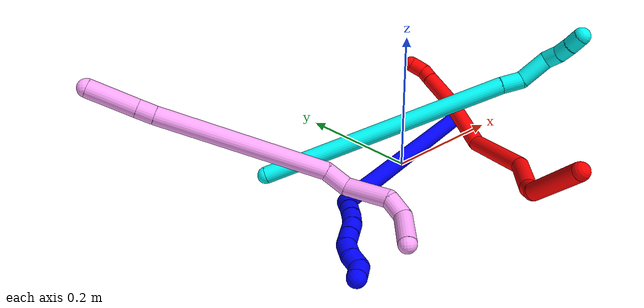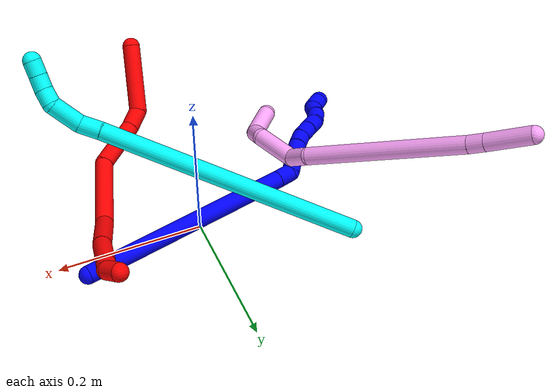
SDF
<sdf version="1.7">
 <world name="default">
  <plugin name="TubeGeneratorPlugin" filename="libtube_generator_plugin.so"/>
  <model name="photoneo_s_sensor">
   <static>1</static>
   <pose>0 0 2 1.57079 1.57079 3.14159</pose>
   <link name="link">
    <inertial><mass>0.1</mass></inertial>
    <sensor name="sensor" type="depth">
     <update_rate>30</update_rate>
     <camera>
      <horizontal_fov>1.22</horizontal_fov>
      <image><width>1920</width><height>1200</height><format>B8G8R8</format></image>
      <clip><near>0.1</near><far>4</far></clip>
      <depth_camera><output>points</output></depth_camera>
     </camera>
     <plugin name="camera_plugin" filename="libgazebo_ros_depth_camera.so">
      <baseline>0.2</baseline>
      <alwaysOn>1</alwaysOn>
      <updateRate>0.0</updateRate>
      <cameraName>camera_ir</cameraName>
      <imageTopicName>/camera/color/image_raw</imageTopicName>
      <cameraInfoTopicName>/camera/color/camera_info</cameraInfoTopicName>
      <depthImageTopicName>/camera/depth/image_raw</depthImageTopicName>
      <depthImageCameraInfoTopicName>/camera/depth/camera_info</depthImageCameraInfoTopicName>
      <pointCloudTopicName>/camera/depth/points</pointCloudTopicName>
      <frameName>fr_optical</frameName>
      <pointCloudCutoff>0.1</pointCloudCutoff>
      <pointCloudCutoffMax>2.0</pointCloudCutoffMax>
      <distortionK1>0</distortionK1>
      <distortionK2>0</distortionK2>
      <distortionK3>0</distortionK3>
      <distortionT1>0</distortionT1>
      <distortionT2>0</distortionT2>
      <CxPrime>0</CxPrime>
      <Cx>0</Cx>
      <Cy>0</Cy>
      <focalLength>0</focalLength>
      <hackBaseline>0</hackBaseline>
     </plugin>
    </sensor>
   </link>
  </model>
  <gravity>0 0 -9.8</gravity>
  <magnetic_field>6e-06 2.3e-05 -4.2e-05</magnetic_field>
  <atmosphere type="adiabatic"/>
  <physics name="default_physics" default="0" type="ode">
   <max_step_size>0.003</max_step_size>
   <real_time_factor>1</real_time_factor>
   <real_time_update_rate>1000</real_time_update_rate>
   <max_contacts>10000</max_contacts>
   <ode>
    <solver>
     <type>quick</type>
     <iters>100</iters>
     <sor>1.3</sor>
     <use_dynamic_moi_rescaling>0</use_dynamic_moi_rescaling>
    </solver>
    <constraints>
     <contact_max_correcting_vel>0</contact_max_correcting_vel>
     <contact_surface_layer>0.001</contact_surface_layer>
     <cfm>0</cfm>
     <erp>0.2</erp>
    </constraints>
   </ode>
  </physics>
  <scene><ambient>0.4 0.4 0.4 1</ambient><background>0.7 0.7 0.7 1</background><shadows>0</shadows></scene>
  <audio><device>default</device></audio>
  <spherical_coordinates>
   <surface_model>EARTH_WGS84</surface_model>
   <latitude_deg>0</latitude_deg>
   <longitude_deg>0</longitude_deg>
   <elevation>0</elevation>
   <heading_deg>0</heading_deg>
  </spherical_coordinates>
  <model name="bin">
   <static>1</static>
   <link name="bottom">
    <collision name="collision-bottom">
     <pose>0 0 -0.01 0 -0 0</pose>
     <geometry><box><size>0.8 0.6 0.02</size></box></geometry>
     <surface>
      <friction><ode><mu>100</mu><mu2>100</mu2></ode></friction>
      <contact><collide_bitmask>65535</collide_bitmask></contact>
     </surface>
    </collision>
   </link>
   <link name="west_wall">
    <collision name="collision-west_wall">
     <pose>-0.41 0 0.1 0 -0 0</pose>
     <geometry><box><size>0.02 0.6 0.2</size></box></geometry>
     <surface>
      <friction><ode><mu>100</mu><mu2>100</mu2></ode></friction>
      <contact><collide_bitmask>65535</collide_bitmask></contact>
     </surface>
    </collision>
   </link>
   <link name="east_wall">
    <collision name="collision-east_wall">
     <pose>0.41 0 0.1 0 -0 0</pose>
     <geometry><box><size>0.02 0.6 0.2</size></box></geometry>
     <surface>
      <friction><ode><mu>100</mu><mu2>100</mu2></ode></friction>
      <contact><collide_bitmask>65535</collide_bitmask></contact>
     </surface>
    </collision>
   </link>
   <link name="south_wall">
    <collision name="collision-south_wall">
     <pose>0 -0.31 0.1 0 -0 0</pose>
     <geometry><box><size>0.8 0.02 0.2</size></box></geometry>
     <surface>
      <friction><ode><mu>100</mu><mu2>100</mu2></ode></friction>
      <contact><collide_bitmask>65535</collide_bitmask></contact>
     </surface>
    </collision>
   </link>
   <link name="north_wall">
    <collision name="collision-north_wall">
     <pose>0 0.31 0.1 0 -0 0</pose>
     <geometry><box><size>0.8 0.02 0.2</size></box></geometry>
     <surface>
      <friction><ode><mu>100</mu><mu2>100</mu2></ode></friction>
      <contact><collide_bitmask>65535</collide_bitmask></contact>
     </surface>
    </collision>
   </link>
  </model>
  <model name="1">
   <static>0</static>
   <link name="1">
    <collision name="collision-cylinder-e_1_1_4">
     <pose>-0.127314 -0.02609 0.080693 0.312711 -0.983172 -0.168412</pose>
     <geometry><cylinder><radius>0.0125</radius><length>0.305947</length></cylinder></geometry>
     <surface>
      <friction><ode><mu>1.16</mu><mu2>1.16</mu2><slip1>0</slip1><slip2>0</slip2></ode></friction>
      <contact><ode><kp>1e+06</kp><kd>1</kd><max_vel>0</max_vel><min_depth>0.001</min_depth></ode></contact>
     </surface>
    </collision>
    <visual name="visual-cylinder-e_1_1_4">
     <pose>-0.127314 -0.02609 0.080693 0.312711 -0.983172 -0.168412</pose>
     <geometry><cylinder><radius>0.0125</radius><length>0.305947</length></cylinder></geometry>
     <material><ambient>0 0 1 1</ambient></material>
    </visual>
    <collision name="collision-cylinder-e_2_4_5">
     <pose>-0.264231 -0.05396 0.167011 0.306579 -1.01991 -0.172397</pose>
     <geometry><cylinder><radius>0.0125</radius><length>0.022542</length></cylinder></geometry>
     <surface>
      <friction><ode><mu>1.16</mu><mu2>1.16</mu2><slip1>0</slip1><slip2>0</slip2></ode></friction>
      <contact><ode><kp>1e+06</kp><kd>1</kd><max_vel>0</max_vel><min_depth>0.001</min_depth></ode></contact>
     </surface>
    </collision>
    <visual name="visual-cylinder-e_2_4_5">
     <pose>-0.264231 -0.05396 0.167011 0.306579 -1.01991 -0.172397</pose>
     <geometry><cylinder><radius>0.0125</radius><length>0.022542</length></cylinder></geometry>
     <material><ambient>0 0 1 1</ambient></material>
    </visual>
    <collision name="collision-cylinder-e_3_5_6">
     <pose>-0.28734 -0.053038 0.170917 -2.1374 -1.33797 1.92761</pose>
     <geometry><cylinder><radius>0.0125</radius><length>0.027761</length></cylinder></geometry>
     <surface>
      <friction><ode><mu>1.16</mu><mu2>1.16</mu2><slip1>0</slip1><slip2>0</slip2></ode></friction>
      <contact><ode><kp>1e+06</kp><kd>1</kd><max_vel>0</max_vel><min_depth>0.001</min_depth></ode></contact>
     </surface>
    </collision>
    <visual name="visual-cylinder-e_3_5_6">
     <pose>-0.28734 -0.053038 0.170917 -2.1374 -1.33797 1.92761</pose>
     <geometry><cylinder><radius>0.0125</radius><length>0.027761</length></cylinder></geometry>
     <material><ambient>0 0 1 1</ambient></material>
    </visual>
    <collision name="collision-cylinder-e_4_6_7">
     <pose>-0.311355 -0.047191 0.169084 -1.60707 -1.27979 1.31472</pose>
     <geometry><cylinder><radius>0.0125</radius><length>0.02194</length></cylinder></geometry>
     <surface>
      <friction><ode><mu>1.16</mu><mu2>1.16</mu2><slip1>0</slip1><slip2>0</slip2></ode></friction>
      <contact><ode><kp>1e+06</kp><kd>1</kd><max_vel>0</max_vel><min_depth>0.001</min_depth></ode></contact>
     </surface>
    </collision>
    <visual name="visual-cylinder-e_4_6_7">
     <pose>-0.311355 -0.047191 0.169084 -1.60707 -1.27979 1.31472</pose>
     <geometry><cylinder><radius>0.0125</radius><length>0.02194</length></cylinder></geometry>
     <material><ambient>0 0 1 1</ambient></material>
    </visual>
    <collision name="collision-cylinder-e_5_7_8">
     <pose>-0.331386 -0.040727 0.170282 -1.1942 -1.21228 0.880841</pose>
     <geometry><cylinder><radius>0.0125</radius><length>0.020339</length></cylinder></geometry>
     <surface>
      <friction><ode><mu>1.16</mu><mu2>1.16</mu2><slip1>0</slip1><slip2>0</slip2></ode></friction>
      <contact><ode><kp>1e+06</kp><kd>1</kd><max_vel>0</max_vel><min_depth>0.001</min_depth></ode></contact>
     </surface>
    </collision>
    <visual name="visual-cylinder-e_5_7_8">
     <pose>-0.331386 -0.040727 0.170282 -1.1942 -1.21228 0.880841</pose>
     <geometry><cylinder><radius>0.0125</radius><length>0.020339</length></cylinder></geometry>
     <material><ambient>0 0 1 1</ambient></material>
    </visual>
    <collision name="collision-cylinder-e_6_8_9">
     <pose>-0.350664 -0.035704 0.174917 -0.474007 -1.20512 0.329307</pose>
     <geometry><cylinder><radius>0.0125</radius><length>0.020891</length></cylinder></geometry>
     <surface>
      <friction><ode><mu>1.16</mu><mu2>1.16</mu2><slip1>0</slip1><slip2>0</slip2></ode></friction>
      <contact><ode><kp>1e+06</kp><kd>1</kd><max_vel>0</max_vel><min_depth>0.001</min_depth></ode></contact>
     </surface>
    </collision>
    <visual name="visual-cylinder-e_6_8_9">
     <pose>-0.350664 -0.035704 0.174917 -0.474007 -1.20512 0.329307</pose>
     <geometry><cylinder><radius>0.0125</radius><length>0.020891</length></cylinder></geometry>
     <material><ambient>0 0 1 1</ambient></material>
    </visual>
    <collision name="collision-cylinder-e_7_9_10">
     <pose>-0.369676 -0.031989 0.181788 -0.515512 -1.15587 0.340548</pose>
     <geometry><cylinder><radius>0.0125</radius><length>0.02023</length></cylinder></geometry>
     <surface>
      <friction><ode><mu>1.16</mu><mu2>1.16</mu2><slip1>0</slip1><slip2>0</slip2></ode></friction>
      <contact><ode><kp>1e+06</kp><kd>1</kd><max_vel>0</max_vel><min_depth>0.001</min_depth></ode></contact>
     </surface>
    </collision>
    <visual name="visual-cylinder-e_7_9_10">
     <pose>-0.369676 -0.031989 0.181788 -0.515512 -1.15587 0.340548</pose>
     <geometry><cylinder><radius>0.0125</radius><length>0.02023</length></cylinder></geometry>
     <material><ambient>0 0 1 1</ambient></material>
    </visual>
    <collision name="collision-cylinder-e_8_10_11">
     <pose>-0.387509 -0.024735 0.185963 -1.45175 -1.01886 0.920522</pose>
     <geometry><cylinder><radius>0.0125</radius><length>0.020146</length></cylinder></geometry>
     <surface>
      <friction><ode><mu>1.16</mu><mu2>1.16</mu2><slip1>0</slip1><slip2>0</slip2></ode></friction>
      <contact><ode><kp>1e+06</kp><kd>1</kd><max_vel>0</max_vel><min_depth>0.001</min_depth></ode></contact>
     </surface>
    </collision>
    <visual name="visual-cylinder-e_8_10_11">
     <pose>-0.387509 -0.024735 0.185963 -1.45175 -1.01886 0.920522</pose>
     <geometry><cylinder><radius>0.0125</radius><length>0.020146</length></cylinder></geometry>
     <material><ambient>0 0 1 1</ambient></material>
    </visual>
    <collision name="collision-cylinder-e_9_11_12">
     <pose>-0.402929 -0.012253 0.185536 -1.7155 -0.752168 0.856643</pose>
     <geometry><cylinder><radius>0.0125</radius><length>0.020031</length></cylinder></geometry>
     <surface>
      <friction><ode><mu>1.16</mu><mu2>1.16</mu2><slip1>0</slip1><slip2>0</slip2></ode></friction>
      <contact><ode><kp>1e+06</kp><kd>1</kd><max_vel>0</max_vel><min_depth>0.001</min_depth></ode></contact>
     </surface>
    </collision>
    <visual name="visual-cylinder-e_9_11_12">
     <pose>-0.402929 -0.012253 0.185536 -1.7155 -0.752168 0.856643</pose>
     <geometry><cylinder><radius>0.0125</radius><length>0.020031</length></cylinder></geometry>
     <material><ambient>0 0 1 1</ambient></material>
    </visual>
    <collision name="collision-cylinder-e_10_12_2">
     <pose>-0.419373 -0.003523 0.18719 -0.5039 -1.25909 0.370715</pose>
     <geometry><cylinder><radius>0.0125</radius><length>0.020174</length></cylinder></geometry>
     <surface>
      <friction><ode><mu>1.16</mu><mu2>1.16</mu2><slip1>0</slip1><slip2>0</slip2></ode></friction>
      <contact><ode><kp>1e+06</kp><kd>1</kd><max_vel>0</max_vel><min_depth>0.001</min_depth></ode></contact>
     </surface>
    </collision>
    <visual name="visual-cylinder-e_10_12_2">
     <pose>-0.419373 -0.003523 0.18719 -0.5039 -1.25909 0.370715</pose>
     <geometry><cylinder><radius>0.0125</radius><length>0.020174</length></cylinder></geometry>
     <material><ambient>0 0 1 1</ambient></material>
    </visual>
    <collision name="collision-sphere-2">
     <pose>-0.428974 -0.002029 0.189899 0 -0 0</pose>
     <geometry><sphere><radius>0.0125</radius></sphere></geometry>
     <surface>
      <friction><ode><mu>1.16</mu><mu2>1.16</mu2><slip1>0</slip1><slip2>0</slip2></ode></friction>
      <contact><ode><kp>1e+06</kp><kd>1</kd><max_vel>0</max_vel><min_depth>0.001</min_depth></ode></contact>
     </surface>
    </collision>
    <visual name="visual-sphere-2">
     <pose>-0.428974 -0.002029 0.189899 0 -0 0</pose>
     <geometry><sphere><radius>0.0125</radius></sphere></geometry>
     <material><ambient>0 0 1 1</ambient></material>
    </visual>
    <collision name="collision-sphere-12">
     <pose>-0.409772 -0.005016 0.184481 0 -0 0</pose>
     <geometry><sphere><radius>0.0125</radius></sphere></geometry>
     <surface>
      <friction><ode><mu>1.16</mu><mu2>1.16</mu2><slip1>0</slip1><slip2>0</slip2></ode></friction>
      <contact><ode><kp>1e+06</kp><kd>1</kd><max_vel>0</max_vel><min_depth>0.001</min_depth></ode></contact>
     </surface>
    </collision>
    <visual name="visual-sphere-12">
     <pose>-0.409772 -0.005016 0.184481 0 -0 0</pose>
     <geometry><sphere><radius>0.0125</radius></sphere></geometry>
     <material><ambient>0 0 1 1</ambient></material>
    </visual>
    <collision name="collision-sphere-11">
     <pose>-0.396087 -0.01949 0.186591 0 -0 0</pose>
     <geometry><sphere><radius>0.0125</radius></sphere></geometry>
     <surface>
      <friction><ode><mu>1.16</mu><mu2>1.16</mu2><slip1>0</slip1><slip2>0</slip2></ode></friction>
      <contact><ode><kp>1e+06</kp><kd>1</kd><max_vel>0</max_vel><min_depth>0.001</min_depth></ode></contact>
     </surface>
    </collision>
    <visual name="visual-sphere-11">
     <pose>-0.396087 -0.01949 0.186591 0 -0 0</pose>
     <geometry><sphere><radius>0.0125</radius></sphere></geometry>
     <material><ambient>0 0 1 1</ambient></material>
    </visual>
    <collision name="collision-sphere-10">
     <pose>-0.378932 -0.029979 0.185336 0 -0 0</pose>
     <geometry><sphere><radius>0.0125</radius></sphere></geometry>
     <surface>
      <friction><ode><mu>1.16</mu><mu2>1.16</mu2><slip1>0</slip1><slip2>0</slip2></ode></friction>
      <contact><ode><kp>1e+06</kp><kd>1</kd><max_vel>0</max_vel><min_depth>0.001</min_depth></ode></contact>
     </surface>
    </collision>
    <visual name="visual-sphere-10">
     <pose>-0.378932 -0.029979 0.185336 0 -0 0</pose>
     <geometry><sphere><radius>0.0125</radius></sphere></geometry>
     <material><ambient>0 0 1 1</ambient></material>
    </visual>
    <collision name="collision-sphere-9">
     <pose>-0.360419 -0.033999 0.178241 0 -0 0</pose>
     <geometry><sphere><radius>0.0125</radius></sphere></geometry>
     <surface>
      <friction><ode><mu>1.16</mu><mu2>1.16</mu2><slip1>0</slip1><slip2>0</slip2></ode></friction>
      <contact><ode><kp>1e+06</kp><kd>1</kd><max_vel>0</max_vel><min_depth>0.001</min_depth></ode></contact>
     </surface>
    </collision>
    <visual name="visual-sphere-9">
     <pose>-0.360419 -0.033999 0.178241 0 -0 0</pose>
     <geometry><sphere><radius>0.0125</radius></sphere></geometry>
     <material><ambient>0 0 1 1</ambient></material>
    </visual>
    <collision name="collision-sphere-4">
     <pose>-0.254627 -0.052179 0.161387 0 -0 0</pose>
     <geometry><sphere><radius>0.0125</radius></sphere></geometry>
     <surface>
      <friction><ode><mu>1.16</mu><mu2>1.16</mu2><slip1>0</slip1><slip2>0</slip2></ode></friction>
      <contact><ode><kp>1e+06</kp><kd>1</kd><max_vel>0</max_vel><min_depth>0.001</min_depth></ode></contact>
     </surface>
    </collision>
    <visual name="visual-sphere-4">
     <pose>-0.254627 -0.052179 0.161387 0 -0 0</pose>
     <geometry><sphere><radius>0.0125</radius></sphere></geometry>
     <material><ambient>0 0 1 1</ambient></material>
    </visual>
    <collision name="collision-sphere-1">
     <geometry><sphere><radius>0.0125</radius></sphere></geometry>
     <surface>
      <friction><ode><mu>1.16</mu><mu2>1.16</mu2><slip1>0</slip1><slip2>0</slip2></ode></friction>
      <contact><ode><kp>1e+06</kp><kd>1</kd><max_vel>0</max_vel><min_depth>0.001</min_depth></ode></contact>
     </surface>
    </collision>
    <visual name="visual-sphere-1">
     <geometry><sphere><radius>0.0125</radius></sphere></geometry>
     <material><ambient>0 0 1 1</ambient></material>
    </visual>
    <collision name="collision-sphere-8">
     <pose>-0.340909 -0.037409 0.171594 0 -0 0</pose>
     <geometry><sphere><radius>0.0125</radius></sphere></geometry>
     <surface>
      <friction><ode><mu>1.16</mu><mu2>1.16</mu2><slip1>0</slip1><slip2>0</slip2></ode></friction>
      <contact><ode><kp>1e+06</kp><kd>1</kd><max_vel>0</max_vel><min_depth>0.001</min_depth></ode></contact>
     </surface>
    </collision>
    <visual name="visual-sphere-8">
     <pose>-0.340909 -0.037409 0.171594 0 -0 0</pose>
     <geometry><sphere><radius>0.0125</radius></sphere></geometry>
     <material><ambient>0 0 1 1</ambient></material>
    </visual>
    <collision name="collision-sphere-5">
     <pose>-0.273834 -0.05574 0.172636 0 -0 0</pose>
     <geometry><sphere><radius>0.0125</radius></sphere></geometry>
     <surface>
      <friction><ode><mu>1.16</mu><mu2>1.16</mu2><slip1>0</slip1><slip2>0</slip2></ode></friction>
      <contact><ode><kp>1e+06</kp><kd>1</kd><max_vel>0</max_vel><min_depth>0.001</min_depth></ode></contact>
     </surface>
    </collision>
    <visual name="visual-sphere-5">
     <pose>-0.273834 -0.05574 0.172636 0 -0 0</pose>
     <geometry><sphere><radius>0.0125</radius></sphere></geometry>
     <material><ambient>0 0 1 1</ambient></material>
    </visual>
    <collision name="collision-sphere-6">
     <pose>-0.300846 -0.050336 0.169198 0 -0 0</pose>
     <geometry><sphere><radius>0.0125</radius></sphere></geometry>
     <surface>
      <friction><ode><mu>1.16</mu><mu2>1.16</mu2><slip1>0</slip1><slip2>0</slip2></ode></friction>
      <contact><ode><kp>1e+06</kp><kd>1</kd><max_vel>0</max_vel><min_depth>0.001</min_depth></ode></contact>
     </surface>
    </collision>
    <visual name="visual-sphere-6">
     <pose>-0.300846 -0.050336 0.169198 0 -0 0</pose>
     <geometry><sphere><radius>0.0125</radius></sphere></geometry>
     <material><ambient>0 0 1 1</ambient></material>
    </visual>
    <collision name="collision-sphere-7">
     <pose>-0.321864 -0.044045 0.16897 0 -0 0</pose>
     <geometry><sphere><radius>0.0125</radius></sphere></geometry>
     <surface>
      <friction><ode><mu>1.16</mu><mu2>1.16</mu2><slip1>0</slip1><slip2>0</slip2></ode></friction>
      <contact><ode><kp>1e+06</kp><kd>1</kd><max_vel>0</max_vel><min_depth>0.001</min_depth></ode></contact>
     </surface>
    </collision>
    <visual name="visual-sphere-7">
     <pose>-0.321864 -0.044045 0.16897 0 -0 0</pose>
     <geometry><sphere><radius>0.0125</radius></sphere></geometry>
     <material><ambient>0 0 1 1</ambient></material>
    </visual>
    <inertial>
     <pose>-0.211196 -0.029485 0.117883 0 -0 0</pose>
     <mass>0.5</mass>
     <inertia>
      <ixx>0.001062</ixx>
      <ixy>0</ixy>
      <ixz>0</ixz>
      <iyy>0.002147</iyy>
      <iyz>0</iyz>
      <izz>0.00243</izz>
     </inertia>
    </inertial>
   </link>
   <pose>0.168353 0.03303 0.011497 -2.38348 0.310631 0.723603</pose>
  </model>
  <model name="2">
   <static>0</static>
   <link name="2">
    <collision name="collision-cylinder-e_1_1_4">
     <pose>0.006723 0.002152 -0.047443 -3.09627 0.140621 -2.51889</pose>
     <geometry><cylinder><radius>0.0125</radius><length>0.095931</length></cylinder></geometry>
     <surface>
      <friction><ode><mu>1.16</mu><mu2>1.16</mu2><slip1>0</slip1><slip2>0</slip2></ode></friction>
      <contact><ode><kp>1e+06</kp><kd>1</kd><max_vel>0</max_vel><min_depth>0.001</min_depth></ode></contact>
     </surface>
    </collision>
    <visual name="visual-cylinder-e_1_1_4">
     <pose>0.006723 0.002152 -0.047443 -3.09627 0.140621 -2.51889</pose>
     <geometry><cylinder><radius>0.0125</radius><length>0.095931</length></cylinder></geometry>
     <material><ambient>1 0 0 1</ambient></material>
    </visual>
    <collision name="collision-cylinder-e_2_4_5">
     <pose>0.022156 0.008751 -0.105702 -2.75148 0.640203 -2.06668</pose>
     <geometry><cylinder><radius>0.0125</radius><length>0.029165</length></cylinder></geometry>
     <surface>
      <friction><ode><mu>1.16</mu><mu2>1.16</mu2><slip1>0</slip1><slip2>0</slip2></ode></friction>
      <contact><ode><kp>1e+06</kp><kd>1</kd><max_vel>0</max_vel><min_depth>0.001</min_depth></ode></contact>
     </surface>
    </collision>
    <visual name="visual-cylinder-e_2_4_5">
     <pose>0.022156 0.008751 -0.105702 -2.75148 0.640203 -2.06668</pose>
     <geometry><cylinder><radius>0.0125</radius><length>0.029165</length></cylinder></geometry>
     <material><ambient>1 0 0 1</ambient></material>
    </visual>
    <collision name="collision-cylinder-e_3_5_6">
     <pose>0.055185 0.032953 -0.138166 -2.40188 0.692632 -1.49912</pose>
     <geometry><cylinder><radius>0.0125</radius><length>0.076165</length></cylinder></geometry>
     <surface>
      <friction><ode><mu>1.16</mu><mu2>1.16</mu2><slip1>0</slip1><slip2>0</slip2></ode></friction>
      <contact><ode><kp>1e+06</kp><kd>1</kd><max_vel>0</max_vel><min_depth>0.001</min_depth></ode></contact>
     </surface>
    </collision>
    <visual name="visual-cylinder-e_3_5_6">
     <pose>0.055185 0.032953 -0.138166 -2.40188 0.692632 -1.49912</pose>
     <geometry><cylinder><radius>0.0125</radius><length>0.076165</length></cylinder></geometry>
     <material><ambient>1 0 0 1</ambient></material>
    </visual>
    <collision name="collision-cylinder-e_4_6_7">
     <pose>0.088826 0.086375 -0.201267 -2.45949 0.172836 -0.478822</pose>
     <geometry><cylinder><radius>0.0125</radius><length>0.108419</length></cylinder></geometry>
     <surface>
      <friction><ode><mu>1.16</mu><mu2>1.16</mu2><slip1>0</slip1><slip2>0</slip2></ode></friction>
      <contact><ode><kp>1e+06</kp><kd>1</kd><max_vel>0</max_vel><min_depth>0.001</min_depth></ode></contact>
     </surface>
    </collision>
    <visual name="visual-cylinder-e_4_6_7">
     <pose>0.088826 0.086375 -0.201267 -2.45949 0.172836 -0.478822</pose>
     <geometry><cylinder><radius>0.0125</radius><length>0.108419</length></cylinder></geometry>
     <material><ambient>1 0 0 1</ambient></material>
    </visual>
    <collision name="collision-cylinder-e_5_7_8">
     <pose>0.101944 0.16205 -0.255483 -1.86573 0.086222 -0.116248</pose>
     <geometry><cylinder><radius>0.0125</radius><length>0.088137</length></cylinder></geometry>
     <surface>
      <friction><ode><mu>1.16</mu><mu2>1.16</mu2><slip1>0</slip1><slip2>0</slip2></ode></friction>
      <contact><ode><kp>1e+06</kp><kd>1</kd><max_vel>0</max_vel><min_depth>0.001</min_depth></ode></contact>
     </surface>
    </collision>
    <visual name="visual-cylinder-e_5_7_8">
     <pose>0.101944 0.16205 -0.255483 -1.86573 0.086222 -0.116248</pose>
     <geometry><cylinder><radius>0.0125</radius><length>0.088137</length></cylinder></geometry>
     <material><ambient>1 0 0 1</ambient></material>
    </visual>
    <collision name="collision-cylinder-e_6_8_9">
     <pose>0.105484 0.230317 -0.279067 -1.96172 -0.008979 0.013412</pose>
     <geometry><cylinder><radius>0.0125</radius><length>0.056804</length></cylinder></geometry>
     <surface>
      <friction><ode><mu>1.16</mu><mu2>1.16</mu2><slip1>0</slip1><slip2>0</slip2></ode></friction>
      <contact><ode><kp>1e+06</kp><kd>1</kd><max_vel>0</max_vel><min_depth>0.001</min_depth></ode></contact>
     </surface>
    </collision>
    <visual name="visual-cylinder-e_6_8_9">
     <pose>0.105484 0.230317 -0.279067 -1.96172 -0.008979 0.013412</pose>
     <geometry><cylinder><radius>0.0125</radius><length>0.056804</length></cylinder></geometry>
     <material><ambient>1 0 0 1</ambient></material>
    </visual>
    <collision name="collision-cylinder-e_7_9_10">
     <pose>0.105715 0.26599 -0.293831 -1.96736 0.047555 -0.071453</pose>
     <geometry><cylinder><radius>0.0125</radius><length>0.020438</length></cylinder></geometry>
     <surface>
      <friction><ode><mu>1.16</mu><mu2>1.16</mu2><slip1>0</slip1><slip2>0</slip2></ode></friction>
      <contact><ode><kp>1e+06</kp><kd>1</kd><max_vel>0</max_vel><min_depth>0.001</min_depth></ode></contact>
     </surface>
    </collision>
    <visual name="visual-cylinder-e_7_9_10">
     <pose>0.105715 0.26599 -0.293831 -1.96736 0.047555 -0.071453</pose>
     <geometry><cylinder><radius>0.0125</radius><length>0.020438</length></cylinder></geometry>
     <material><ambient>1 0 0 1</ambient></material>
    </visual>
    <collision name="collision-cylinder-e_8_10_2">
     <pose>0.098796 0.28505 -0.300546 -1.85069 -0.63575 0.823867</pose>
     <geometry><cylinder><radius>0.0125</radius><length>0.024941</length></cylinder></geometry>
     <surface>
      <friction><ode><mu>1.16</mu><mu2>1.16</mu2><slip1>0</slip1><slip2>0</slip2></ode></friction>
      <contact><ode><kp>1e+06</kp><kd>1</kd><max_vel>0</max_vel><min_depth>0.001</min_depth></ode></contact>
     </surface>
    </collision>
    <visual name="visual-cylinder-e_8_10_2">
     <pose>0.098796 0.28505 -0.300546 -1.85069 -0.63575 0.823867</pose>
     <geometry><cylinder><radius>0.0125</radius><length>0.024941</length></cylinder></geometry>
     <material><ambient>1 0 0 1</ambient></material>
    </visual>
    <collision name="collision-sphere-2">
     <pose>0.091391 0.294693 -0.303318 0 -0 0</pose>
     <geometry><sphere><radius>0.0125</radius></sphere></geometry>
     <surface>
      <friction><ode><mu>1.16</mu><mu2>1.16</mu2><slip1>0</slip1><slip2>0</slip2></ode></friction>
      <contact><ode><kp>1e+06</kp><kd>1</kd><max_vel>0</max_vel><min_depth>0.001</min_depth></ode></contact>
     </surface>
    </collision>
    <visual name="visual-sphere-2">
     <pose>0.091391 0.294693 -0.303318 0 -0 0</pose>
     <geometry><sphere><radius>0.0125</radius></sphere></geometry>
     <material><ambient>1 0 0 1</ambient></material>
    </visual>
    <collision name="collision-sphere-10">
     <pose>0.1062 0.275406 -0.297774 0 -0 0</pose>
     <geometry><sphere><radius>0.0125</radius></sphere></geometry>
     <surface>
      <friction><ode><mu>1.16</mu><mu2>1.16</mu2><slip1>0</slip1><slip2>0</slip2></ode></friction>
      <contact><ode><kp>1e+06</kp><kd>1</kd><max_vel>0</max_vel><min_depth>0.001</min_depth></ode></contact>
     </surface>
    </collision>
    <visual name="visual-sphere-10">
     <pose>0.1062 0.275406 -0.297774 0 -0 0</pose>
     <geometry><sphere><radius>0.0125</radius></sphere></geometry>
     <material><ambient>1 0 0 1</ambient></material>
    </visual>
    <collision name="collision-sphere-9">
     <pose>0.105229 0.256575 -0.289889 0 -0 0</pose>
     <geometry><sphere><radius>0.0125</radius></sphere></geometry>
     <surface>
      <friction><ode><mu>1.16</mu><mu2>1.16</mu2><slip1>0</slip1><slip2>0</slip2></ode></friction>
      <contact><ode><kp>1e+06</kp><kd>1</kd><max_vel>0</max_vel><min_depth>0.001</min_depth></ode></contact>
     </surface>
    </collision>
    <visual name="visual-sphere-9">
     <pose>0.105229 0.256575 -0.289889 0 -0 0</pose>
     <geometry><sphere><radius>0.0125</radius></sphere></geometry>
     <material><ambient>1 0 0 1</ambient></material>
    </visual>
    <collision name="collision-sphere-4">
     <pose>0.013445 0.004303 -0.094886 0 -0 0</pose>
     <geometry><sphere><radius>0.0125</radius></sphere></geometry>
     <surface>
      <friction><ode><mu>1.16</mu><mu2>1.16</mu2><slip1>0</slip1><slip2>0</slip2></ode></friction>
      <contact><ode><kp>1e+06</kp><kd>1</kd><max_vel>0</max_vel><min_depth>0.001</min_depth></ode></contact>
     </surface>
    </collision>
    <visual name="visual-sphere-4">
     <pose>0.013445 0.004303 -0.094886 0 -0 0</pose>
     <geometry><sphere><radius>0.0125</radius></sphere></geometry>
     <material><ambient>1 0 0 1</ambient></material>
    </visual>
    <collision name="collision-sphere-1">
     <geometry><sphere><radius>0.0125</radius></sphere></geometry>
     <surface>
      <friction><ode><mu>1.16</mu><mu2>1.16</mu2><slip1>0</slip1><slip2>0</slip2></ode></friction>
      <contact><ode><kp>1e+06</kp><kd>1</kd><max_vel>0</max_vel><min_depth>0.001</min_depth></ode></contact>
     </surface>
    </collision>
    <visual name="visual-sphere-1">
     <geometry><sphere><radius>0.0125</radius></sphere></geometry>
     <material><ambient>1 0 0 1</ambient></material>
    </visual>
    <collision name="collision-sphere-8">
     <pose>0.105739 0.204058 -0.268245 0 -0 0</pose>
     <geometry><sphere><radius>0.0125</radius></sphere></geometry>
     <surface>
      <friction><ode><mu>1.16</mu><mu2>1.16</mu2><slip1>0</slip1><slip2>0</slip2></ode></friction>
      <contact><ode><kp>1e+06</kp><kd>1</kd><max_vel>0</max_vel><min_depth>0.001</min_depth></ode></contact>
     </surface>
    </collision>
    <visual name="visual-sphere-8">
     <pose>0.105739 0.204058 -0.268245 0 -0 0</pose>
     <geometry><sphere><radius>0.0125</radius></sphere></geometry>
     <material><ambient>1 0 0 1</ambient></material>
    </visual>
    <collision name="collision-sphere-5">
     <pose>0.030867 0.013198 -0.116518 0 -0 0</pose>
     <geometry><sphere><radius>0.0125</radius></sphere></geometry>
     <surface>
      <friction><ode><mu>1.16</mu><mu2>1.16</mu2><slip1>0</slip1><slip2>0</slip2></ode></friction>
      <contact><ode><kp>1e+06</kp><kd>1</kd><max_vel>0</max_vel><min_depth>0.001</min_depth></ode></contact>
     </surface>
    </collision>
    <visual name="visual-sphere-5">
     <pose>0.030867 0.013198 -0.116518 0 -0 0</pose>
     <geometry><sphere><radius>0.0125</radius></sphere></geometry>
     <material><ambient>1 0 0 1</ambient></material>
    </visual>
    <collision name="collision-sphere-6">
     <pose>0.079503 0.052708 -0.159814 0 -0 0</pose>
     <geometry><sphere><radius>0.0125</radius></sphere></geometry>
     <surface>
      <friction><ode><mu>1.16</mu><mu2>1.16</mu2><slip1>0</slip1><slip2>0</slip2></ode></friction>
      <contact><ode><kp>1e+06</kp><kd>1</kd><max_vel>0</max_vel><min_depth>0.001</min_depth></ode></contact>
     </surface>
    </collision>
    <visual name="visual-sphere-6">
     <pose>0.079503 0.052708 -0.159814 0 -0 0</pose>
     <geometry><sphere><radius>0.0125</radius></sphere></geometry>
     <material><ambient>1 0 0 1</ambient></material>
    </visual>
    <collision name="collision-sphere-7">
     <pose>0.098149 0.120041 -0.24272 0 -0 0</pose>
     <geometry><sphere><radius>0.0125</radius></sphere></geometry>
     <surface>
      <friction><ode><mu>1.16</mu><mu2>1.16</mu2><slip1>0</slip1><slip2>0</slip2></ode></friction>
      <contact><ode><kp>1e+06</kp><kd>1</kd><max_vel>0</max_vel><min_depth>0.001</min_depth></ode></contact>
     </surface>
    </collision>
    <visual name="visual-sphere-7">
     <pose>0.098149 0.120041 -0.24272 0 -0 0</pose>
     <geometry><sphere><radius>0.0125</radius></sphere></geometry>
     <material><ambient>1 0 0 1</ambient></material>
    </visual>
    <inertial>
     <pose>0.069453 0.104495 -0.183699 0 -0 0</pose>
     <mass>0.5</mass>
     <inertia>
      <ixx>-1.1e-05</ixx>
      <ixy>0</ixy>
      <ixz>0</ixz>
      <iyy>-0.000124</iyy>
      <iyz>0</iyz>
      <izz>-0.000255</izz>
     </inertia>
    </inertial>
   </link>
   <pose>-0.005984 -0.288502 0.105455 0.788701 0.085421 -0.145964</pose>
  </model>
  <model name="3">
   <static>0</static>
   <link name="3">
    <collision name="collision-cylinder-e_1_1_4">
     <pose>0.128954 -0.076377 -0.102095 2.49931 0.791062 1.79612</pose>
     <geometry><cylinder><radius>0.0125</radius><length>0.36269</length></cylinder></geometry>
     <surface>
      <friction><ode><mu>1.16</mu><mu2>1.16</mu2><slip1>0</slip1><slip2>0</slip2></ode></friction>
      <contact><ode><kp>1e+06</kp><kd>1</kd><max_vel>0</max_vel><min_depth>0.001</min_depth></ode></contact>
     </surface>
    </collision>
    <visual name="visual-cylinder-e_1_1_4">
     <pose>0.128954 -0.076377 -0.102095 2.49931 0.791062 1.79612</pose>
     <geometry><cylinder><radius>0.0125</radius><length>0.36269</length></cylinder></geometry>
     <material><ambient>0.003922 1 0.996078 1</ambient></material>
    </visual>
    <collision name="collision-cylinder-e_2_4_5">
     <pose>0.267496 -0.159993 -0.213199 2.46471 0.692471 1.59544</pose>
     <geometry><cylinder><radius>0.0125</radius><length>0.030032</length></cylinder></geometry>
     <surface>
      <friction><ode><mu>1.16</mu><mu2>1.16</mu2><slip1>0</slip1><slip2>0</slip2></ode></friction>
      <contact><ode><kp>1e+06</kp><kd>1</kd><max_vel>0</max_vel><min_depth>0.001</min_depth></ode></contact>
     </surface>
    </collision>
    <visual name="visual-cylinder-e_2_4_5">
     <pose>0.267496 -0.159993 -0.213199 2.46471 0.692471 1.59544</pose>
     <geometry><cylinder><radius>0.0125</radius><length>0.030032</length></cylinder></geometry>
     <material><ambient>0.003922 1 0.996078 1</ambient></material>
    </visual>
    <collision name="collision-cylinder-e_3_5_6">
     <pose>0.297392 -0.172554 -0.2295 2.51111 1.15251 2.21134</pose>
     <geometry><cylinder><radius>0.0125</radius><length>0.044451</length></cylinder></geometry>
     <surface>
      <friction><ode><mu>1.16</mu><mu2>1.16</mu2><slip1>0</slip1><slip2>0</slip2></ode></friction>
      <contact><ode><kp>1e+06</kp><kd>1</kd><max_vel>0</max_vel><min_depth>0.001</min_depth></ode></contact>
     </surface>
    </collision>
    <visual name="visual-cylinder-e_3_5_6">
     <pose>0.297392 -0.172554 -0.2295 2.51111 1.15251 2.21134</pose>
     <geometry><cylinder><radius>0.0125</radius><length>0.044451</length></cylinder></geometry>
     <material><ambient>0.003922 1 0.996078 1</ambient></material>
    </visual>
    <collision name="collision-cylinder-e_4_6_7">
     <pose>0.325997 -0.184757 -0.235811 1.42915 0.873454 0.769529</pose>
     <geometry><cylinder><radius>0.0125</radius><length>0.021645</length></cylinder></geometry>
     <surface>
      <friction><ode><mu>1.16</mu><mu2>1.16</mu2><slip1>0</slip1><slip2>0</slip2></ode></friction>
      <contact><ode><kp>1e+06</kp><kd>1</kd><max_vel>0</max_vel><min_depth>0.001</min_depth></ode></contact>
     </surface>
    </collision>
    <visual name="visual-cylinder-e_4_6_7">
     <pose>0.325997 -0.184757 -0.235811 1.42915 0.873454 0.769529</pose>
     <geometry><cylinder><radius>0.0125</radius><length>0.021645</length></cylinder></geometry>
     <material><ambient>0.003922 1 0.996078 1</ambient></material>
    </visual>
    <collision name="collision-cylinder-e_5_7_8">
     <pose>0.342812 -0.196758 -0.232492 1.14251 0.986844 0.665609</pose>
     <geometry><cylinder><radius>0.0125</radius><length>0.020421</length></cylinder></geometry>
     <surface>
      <friction><ode><mu>1.16</mu><mu2>1.16</mu2><slip1>0</slip1><slip2>0</slip2></ode></friction>
      <contact><ode><kp>1e+06</kp><kd>1</kd><max_vel>0</max_vel><min_depth>0.001</min_depth></ode></contact>
     </surface>
    </collision>
    <visual name="visual-cylinder-e_5_7_8">
     <pose>0.342812 -0.196758 -0.232492 1.14251 0.986844 0.665609</pose>
     <geometry><cylinder><radius>0.0125</radius><length>0.020421</length></cylinder></geometry>
     <material><ambient>0.003922 1 0.996078 1</ambient></material>
    </visual>
    <collision name="collision-cylinder-e_6_8_2">
     <pose>0.360402 -0.206354 -0.22782 1.08996 1.0631 0.684832</pose>
     <geometry><cylinder><radius>0.0125</radius><length>0.020761</length></cylinder></geometry>
     <surface>
      <friction><ode><mu>1.16</mu><mu2>1.16</mu2><slip1>0</slip1><slip2>0</slip2></ode></friction>
      <contact><ode><kp>1e+06</kp><kd>1</kd><max_vel>0</max_vel><min_depth>0.001</min_depth></ode></contact>
     </surface>
    </collision>
    <visual name="visual-cylinder-e_6_8_2">
     <pose>0.360402 -0.206354 -0.22782 1.08996 1.0631 0.684832</pose>
     <geometry><cylinder><radius>0.0125</radius><length>0.020761</length></cylinder></geometry>
     <material><ambient>0.003922 1 0.996078 1</ambient></material>
    </visual>
    <collision name="collision-sphere-2">
     <pose>0.369473 -0.210828 -0.225486 0 -0 0</pose>
     <geometry><sphere><radius>0.0125</radius></sphere></geometry>
     <surface>
      <friction><ode><mu>1.16</mu><mu2>1.16</mu2><slip1>0</slip1><slip2>0</slip2></ode></friction>
      <contact><ode><kp>1e+06</kp><kd>1</kd><max_vel>0</max_vel><min_depth>0.001</min_depth></ode></contact>
     </surface>
    </collision>
    <visual name="visual-sphere-2">
     <pose>0.369473 -0.210828 -0.225486 0 -0 0</pose>
     <geometry><sphere><radius>0.0125</radius></sphere></geometry>
     <material><ambient>0.003922 1 0.996078 1</ambient></material>
    </visual>
    <collision name="collision-sphere-4">
     <pose>0.257909 -0.152754 -0.204189 0 -0 0</pose>
     <geometry><sphere><radius>0.0125</radius></sphere></geometry>
     <surface>
      <friction><ode><mu>1.16</mu><mu2>1.16</mu2><slip1>0</slip1><slip2>0</slip2></ode></friction>
      <contact><ode><kp>1e+06</kp><kd>1</kd><max_vel>0</max_vel><min_depth>0.001</min_depth></ode></contact>
     </surface>
    </collision>
    <visual name="visual-sphere-4">
     <pose>0.257909 -0.152754 -0.204189 0 -0 0</pose>
     <geometry><sphere><radius>0.0125</radius></sphere></geometry>
     <material><ambient>0.003922 1 0.996078 1</ambient></material>
    </visual>
    <collision name="collision-sphere-1">
     <geometry><sphere><radius>0.0125</radius></sphere></geometry>
     <surface>
      <friction><ode><mu>1.16</mu><mu2>1.16</mu2><slip1>0</slip1><slip2>0</slip2></ode></friction>
      <contact><ode><kp>1e+06</kp><kd>1</kd><max_vel>0</max_vel><min_depth>0.001</min_depth></ode></contact>
     </surface>
    </collision>
    <visual name="visual-sphere-1">
     <geometry><sphere><radius>0.0125</radius></sphere></geometry>
     <material><ambient>0.003922 1 0.996078 1</ambient></material>
    </visual>
    <collision name="collision-sphere-8">
     <pose>0.35133 -0.201879 -0.230154 0 -0 0</pose>
     <geometry><sphere><radius>0.0125</radius></sphere></geometry>
     <surface>
      <friction><ode><mu>1.16</mu><mu2>1.16</mu2><slip1>0</slip1><slip2>0</slip2></ode></friction>
      <contact><ode><kp>1e+06</kp><kd>1</kd><max_vel>0</max_vel><min_depth>0.001</min_depth></ode></contact>
     </surface>
    </collision>
    <visual name="visual-sphere-8">
     <pose>0.35133 -0.201879 -0.230154 0 -0 0</pose>
     <geometry><sphere><radius>0.0125</radius></sphere></geometry>
     <material><ambient>0.003922 1 0.996078 1</ambient></material>
    </visual>
    <collision name="collision-sphere-5">
     <pose>0.277083 -0.167232 -0.222208 0 -0 0</pose>
     <geometry><sphere><radius>0.0125</radius></sphere></geometry>
     <surface>
      <friction><ode><mu>1.16</mu><mu2>1.16</mu2><slip1>0</slip1><slip2>0</slip2></ode></friction>
      <contact><ode><kp>1e+06</kp><kd>1</kd><max_vel>0</max_vel><min_depth>0.001</min_depth></ode></contact>
     </surface>
    </collision>
    <visual name="visual-sphere-5">
     <pose>0.277083 -0.167232 -0.222208 0 -0 0</pose>
     <geometry><sphere><radius>0.0125</radius></sphere></geometry>
     <material><ambient>0.003922 1 0.996078 1</ambient></material>
    </visual>
    <collision name="collision-sphere-6">
     <pose>0.317701 -0.177877 -0.236792 0 -0 0</pose>
     <geometry><sphere><radius>0.0125</radius></sphere></geometry>
     <surface>
      <friction><ode><mu>1.16</mu><mu2>1.16</mu2><slip1>0</slip1><slip2>0</slip2></ode></friction>
      <contact><ode><kp>1e+06</kp><kd>1</kd><max_vel>0</max_vel><min_depth>0.001</min_depth></ode></contact>
     </surface>
    </collision>
    <visual name="visual-sphere-6">
     <pose>0.317701 -0.177877 -0.236792 0 -0 0</pose>
     <geometry><sphere><radius>0.0125</radius></sphere></geometry>
     <material><ambient>0.003922 1 0.996078 1</ambient></material>
    </visual>
    <collision name="collision-sphere-7">
     <pose>0.334293 -0.191637 -0.23483 0 -0 0</pose>
     <geometry><sphere><radius>0.0125</radius></sphere></geometry>
     <surface>
      <friction><ode><mu>1.16</mu><mu2>1.16</mu2><slip1>0</slip1><slip2>0</slip2></ode></friction>
      <contact><ode><kp>1e+06</kp><kd>1</kd><max_vel>0</max_vel><min_depth>0.001</min_depth></ode></contact>
     </surface>
    </collision>
    <visual name="visual-sphere-7">
     <pose>0.334293 -0.191637 -0.23483 0 -0 0</pose>
     <geometry><sphere><radius>0.0125</radius></sphere></geometry>
     <material><ambient>0.003922 1 0.996078 1</ambient></material>
    </visual>
    <inertial>
     <pose>0.179125 -0.104955 -0.136429 0 -0 0</pose>
     <mass>0.5</mass>
     <inertia>
      <ixx>0.002144</ixx>
      <ixy>0</ixy>
      <ixz>0</ixz>
      <iyy>0.005109</iyy>
      <iyz>0</iyz>
      <izz>-0.001182</izz>
     </inertia>
    </inertial>
   </link>
   <pose>-0.184965 0.096632 0.011662 0.51968 -1.11098 -0.51309</pose>
  </model>
  <model name="4">
   <static>0</static>
   <link name="4">
    <collision name="collision-cylinder-e_1_1_4">
     <pose>0.00078 -0.017474 -0.027416 2.57416 0.02398 0.082199</pose>
     <geometry><cylinder><radius>0.0125</radius><length>0.06504</length></cylinder></geometry>
     <surface>
      <friction><ode><mu>1.16</mu><mu2>1.16</mu2><slip1>0</slip1><slip2>0</slip2></ode></friction>
      <contact><ode><kp>1e+06</kp><kd>1</kd><max_vel>0</max_vel><min_depth>0.001</min_depth></ode></contact>
     </surface>
    </collision>
    <visual name="visual-cylinder-e_1_1_4">
     <pose>0.00078 -0.017474 -0.027416 2.57416 0.02398 0.082199</pose>
     <geometry><cylinder><radius>0.0125</radius><length>0.06504</length></cylinder></geometry>
     <material><ambient>1 0.65098 0.996078 1</ambient></material>
    </visual>
    <collision name="collision-cylinder-e_2_4_5">
     <pose>0.001933 -0.041027 -0.064753 2.59183 0.032082 0.113644</pose>
     <geometry><cylinder><radius>0.0125</radius><length>0.023284</length></cylinder></geometry>
     <surface>
      <friction><ode><mu>1.16</mu><mu2>1.16</mu2><slip1>0</slip1><slip2>0</slip2></ode></friction>
      <contact><ode><kp>1e+06</kp><kd>1</kd><max_vel>0</max_vel><min_depth>0.001</min_depth></ode></contact>
     </surface>
    </collision>
    <visual name="visual-cylinder-e_2_4_5">
     <pose>0.001933 -0.041027 -0.064753 2.59183 0.032082 0.113644</pose>
     <geometry><cylinder><radius>0.0125</radius><length>0.023284</length></cylinder></geometry>
     <material><ambient>1 0.65098 0.996078 1</ambient></material>
    </visual>
    <collision name="collision-cylinder-e_3_5_6">
     <pose>0.004971 -0.100821 -0.177723 2.66109 0.022928 0.093525</pose>
     <geometry><cylinder><radius>0.0125</radius><length>0.232477</length></cylinder></geometry>
     <surface>
      <friction><ode><mu>1.16</mu><mu2>1.16</mu2><slip1>0</slip1><slip2>0</slip2></ode></friction>
      <contact><ode><kp>1e+06</kp><kd>1</kd><max_vel>0</max_vel><min_depth>0.001</min_depth></ode></contact>
     </surface>
    </collision>
    <visual name="visual-cylinder-e_3_5_6">
     <pose>0.004971 -0.100821 -0.177723 2.66109 0.022928 0.093525</pose>
     <geometry><cylinder><radius>0.0125</radius><length>0.232477</length></cylinder></geometry>
     <material><ambient>1 0.65098 0.996078 1</ambient></material>
    </visual>
    <collision name="collision-cylinder-e_4_6_7">
     <pose>0.013285 -0.164683 -0.293073 2.45179 0.340435 0.892488</pose>
     <geometry><cylinder><radius>0.0125</radius><length>0.033834</length></cylinder></geometry>
     <surface>
      <friction><ode><mu>1.16</mu><mu2>1.16</mu2><slip1>0</slip1><slip2>0</slip2></ode></friction>
      <contact><ode><kp>1e+06</kp><kd>1</kd><max_vel>0</max_vel><min_depth>0.001</min_depth></ode></contact>
     </surface>
    </collision>
    <visual name="visual-cylinder-e_4_6_7">
     <pose>0.013285 -0.164683 -0.293073 2.45179 0.340435 0.892488</pose>
     <geometry><cylinder><radius>0.0125</radius><length>0.033834</length></cylinder></geometry>
     <material><ambient>1 0.65098 0.996078 1</ambient></material>
    </visual>
    <collision name="collision-cylinder-e_5_7_8">
     <pose>0.032901 -0.176776 -0.333288 3.07202 0.462971 2.84842</pose>
     <geometry><cylinder><radius>0.0125</radius><length>0.06255</length></cylinder></geometry>
     <surface>
      <friction><ode><mu>1.16</mu><mu2>1.16</mu2><slip1>0</slip1><slip2>0</slip2></ode></friction>
      <contact><ode><kp>1e+06</kp><kd>1</kd><max_vel>0</max_vel><min_depth>0.001</min_depth></ode></contact>
     </surface>
    </collision>
    <visual name="visual-cylinder-e_5_7_8">
     <pose>0.032901 -0.176776 -0.333288 3.07202 0.462971 2.84842</pose>
     <geometry><cylinder><radius>0.0125</radius><length>0.06255</length></cylinder></geometry>
     <material><ambient>1 0.65098 0.996078 1</ambient></material>
    </visual>
    <collision name="collision-cylinder-e_6_8_9">
     <pose>0.057769 -0.184965 -0.369079 2.47134 0.825896 1.79839</pose>
     <geometry><cylinder><radius>0.0125</radius><length>0.029655</length></cylinder></geometry>
     <surface>
      <friction><ode><mu>1.16</mu><mu2>1.16</mu2><slip1>0</slip1><slip2>0</slip2></ode></friction>
      <contact><ode><kp>1e+06</kp><kd>1</kd><max_vel>0</max_vel><min_depth>0.001</min_depth></ode></contact>
     </surface>
    </collision>
    <visual name="visual-cylinder-e_6_8_9">
     <pose>0.057769 -0.184965 -0.369079 2.47134 0.825896 1.79839</pose>
     <geometry><cylinder><radius>0.0125</radius><length>0.029655</length></cylinder></geometry>
     <material><ambient>1 0.65098 0.996078 1</ambient></material>
    </visual>
    <collision name="collision-cylinder-e_7_9_2">
     <pose>0.095211 -0.19053 -0.378201 -2.64251 1.51745 -2.61636</pose>
     <geometry><cylinder><radius>0.0125</radius><length>0.053161</length></cylinder></geometry>
     <surface>
      <friction><ode><mu>1.16</mu><mu2>1.16</mu2><slip1>0</slip1><slip2>0</slip2></ode></friction>
      <contact><ode><kp>1e+06</kp><kd>1</kd><max_vel>0</max_vel><min_depth>0.001</min_depth></ode></contact>
     </surface>
    </collision>
    <visual name="visual-cylinder-e_7_9_2">
     <pose>0.095211 -0.19053 -0.378201 -2.64251 1.51745 -2.61636</pose>
     <geometry><cylinder><radius>0.0125</radius><length>0.053161</length></cylinder></geometry>
     <material><ambient>1 0.65098 0.996078 1</ambient></material>
    </visual>
    <collision name="collision-sphere-2">
     <pose>0.121754 -0.189852 -0.379445 0 -0 0</pose>
     <geometry><sphere><radius>0.0125</radius></sphere></geometry>
     <surface>
      <friction><ode><mu>1.16</mu><mu2>1.16</mu2><slip1>0</slip1><slip2>0</slip2></ode></friction>
      <contact><ode><kp>1e+06</kp><kd>1</kd><max_vel>0</max_vel><min_depth>0.001</min_depth></ode></contact>
     </surface>
    </collision>
    <visual name="visual-sphere-2">
     <pose>0.121754 -0.189852 -0.379445 0 -0 0</pose>
     <geometry><sphere><radius>0.0125</radius></sphere></geometry>
     <material><ambient>1 0.65098 0.996078 1</ambient></material>
    </visual>
    <collision name="collision-sphere-9">
     <pose>0.068669 -0.191208 -0.376956 0 -0 0</pose>
     <geometry><sphere><radius>0.0125</radius></sphere></geometry>
     <surface>
      <friction><ode><mu>1.16</mu><mu2>1.16</mu2><slip1>0</slip1><slip2>0</slip2></ode></friction>
      <contact><ode><kp>1e+06</kp><kd>1</kd><max_vel>0</max_vel><min_depth>0.001</min_depth></ode></contact>
     </surface>
    </collision>
    <visual name="visual-sphere-9">
     <pose>0.068669 -0.191208 -0.376956 0 -0 0</pose>
     <geometry><sphere><radius>0.0125</radius></sphere></geometry>
     <material><ambient>1 0.65098 0.996078 1</ambient></material>
    </visual>
    <collision name="collision-sphere-4">
     <pose>0.00156 -0.034947 -0.054831 0 -0 0</pose>
     <geometry><sphere><radius>0.0125</radius></sphere></geometry>
     <surface>
      <friction><ode><mu>1.16</mu><mu2>1.16</mu2><slip1>0</slip1><slip2>0</slip2></ode></friction>
      <contact><ode><kp>1e+06</kp><kd>1</kd><max_vel>0</max_vel><min_depth>0.001</min_depth></ode></contact>
     </surface>
    </collision>
    <visual name="visual-sphere-4">
     <pose>0.00156 -0.034947 -0.054831 0 -0 0</pose>
     <geometry><sphere><radius>0.0125</radius></sphere></geometry>
     <material><ambient>1 0.65098 0.996078 1</ambient></material>
    </visual>
    <collision name="collision-sphere-1">
     <geometry><sphere><radius>0.0125</radius></sphere></geometry>
     <surface>
      <friction><ode><mu>1.16</mu><mu2>1.16</mu2><slip1>0</slip1><slip2>0</slip2></ode></friction>
      <contact><ode><kp>1e+06</kp><kd>1</kd><max_vel>0</max_vel><min_depth>0.001</min_depth></ode></contact>
     </surface>
    </collision>
    <visual name="visual-sphere-1">
     <geometry><sphere><radius>0.0125</radius></sphere></geometry>
     <material><ambient>1 0.65098 0.996078 1</ambient></material>
    </visual>
    <collision name="collision-sphere-8">
     <pose>0.046868 -0.178721 -0.361203 0 -0 0</pose>
     <geometry><sphere><radius>0.0125</radius></sphere></geometry>
     <surface>
      <friction><ode><mu>1.16</mu><mu2>1.16</mu2><slip1>0</slip1><slip2>0</slip2></ode></friction>
      <contact><ode><kp>1e+06</kp><kd>1</kd><max_vel>0</max_vel><min_depth>0.001</min_depth></ode></contact>
     </surface>
    </collision>
    <visual name="visual-sphere-8">
     <pose>0.046868 -0.178721 -0.361203 0 -0 0</pose>
     <geometry><sphere><radius>0.0125</radius></sphere></geometry>
     <material><ambient>1 0.65098 0.996078 1</ambient></material>
    </visual>
    <collision name="collision-sphere-5">
     <pose>0.002306 -0.047107 -0.074674 0 -0 0</pose>
     <geometry><sphere><radius>0.0125</radius></sphere></geometry>
     <surface>
      <friction><ode><mu>1.16</mu><mu2>1.16</mu2><slip1>0</slip1><slip2>0</slip2></ode></friction>
      <contact><ode><kp>1e+06</kp><kd>1</kd><max_vel>0</max_vel><min_depth>0.001</min_depth></ode></contact>
     </surface>
    </collision>
    <visual name="visual-sphere-5">
     <pose>0.002306 -0.047107 -0.074674 0 -0 0</pose>
     <geometry><sphere><radius>0.0125</radius></sphere></geometry>
     <material><ambient>1 0.65098 0.996078 1</ambient></material>
    </visual>
    <collision name="collision-sphere-6">
     <pose>0.007636 -0.154535 -0.280772 0 -0 0</pose>
     <geometry><sphere><radius>0.0125</radius></sphere></geometry>
     <surface>
      <friction><ode><mu>1.16</mu><mu2>1.16</mu2><slip1>0</slip1><slip2>0</slip2></ode></friction>
      <contact><ode><kp>1e+06</kp><kd>1</kd><max_vel>0</max_vel><min_depth>0.001</min_depth></ode></contact>
     </surface>
    </collision>
    <visual name="visual-sphere-6">
     <pose>0.007636 -0.154535 -0.280772 0 -0 0</pose>
     <geometry><sphere><radius>0.0125</radius></sphere></geometry>
     <material><ambient>1 0.65098 0.996078 1</ambient></material>
    </visual>
    <collision name="collision-sphere-7">
     <pose>0.018933 -0.17483 -0.305373 0 -0 0</pose>
     <geometry><sphere><radius>0.0125</radius></sphere></geometry>
     <surface>
      <friction><ode><mu>1.16</mu><mu2>1.16</mu2><slip1>0</slip1><slip2>0</slip2></ode></friction>
      <contact><ode><kp>1e+06</kp><kd>1</kd><max_vel>0</max_vel><min_depth>0.001</min_depth></ode></contact>
     </surface>
    </collision>
    <visual name="visual-sphere-7">
     <pose>0.018933 -0.17483 -0.305373 0 -0 0</pose>
     <geometry><sphere><radius>0.0125</radius></sphere></geometry>
     <material><ambient>1 0.65098 0.996078 1</ambient></material>
    </visual>
    <inertial>
     <pose>0.021067 -0.115546 -0.212841 0 -0 0</pose>
     <mass>0.5</mass>
     <inertia>
      <ixx>0.001182</ixx>
      <ixy>0</ixy>
      <ixz>0</ixz>
      <iyy>-0.00082</iyy>
      <iyz>0</iyz>
      <izz>0.000425</izz>
     </inertia>
    </inertial>
   </link>
   <pose>-0.3885 0.182154 0.179372 1.68258 0.14605 -2.33396</pose>
  </model>
 </world>
</sdf>
